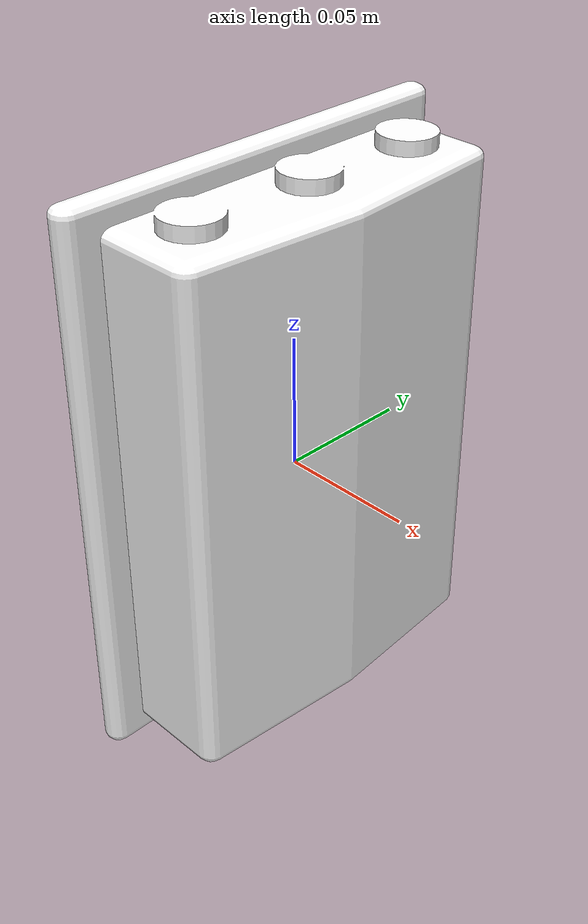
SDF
<?xml version="1.0" ?>
<sdf version="1.9">
	<model name="rfid-scanner">
		<static>false</static>
		<link name="rfid-scanner-link">
			<collision name="rfid-scanner-collision">
				<geometry>
					<mesh>
						<uri>model://rfid-scanner/meshes/model1.obj</uri>
					  <scale>1 1 1</scale>
					</mesh>
				</geometry>
			</collision>

			<visual name="rfid-scanner-visual">
				<pose degrees="true">0 0 0 90 0 180</pose>
				<geometry>
					<mesh>
						<uri>model://rfid-scanner/meshes/model1.obj</uri>
					  <scale>1 1 1</scale>
					</mesh>
				</geometry>
				<material>
					<ambient>1 1 1 1</ambient>
					<diffuse>1 1 1 1</diffuse>
					<specular>0.1 0.1 0.1 1</specular>
					<emissive>0 0 0 1</emissive>
				</material>
			</visual>

			<inertial>
				<mass>2</mass>
				<inertia>
					<ixx>1</ixx>
					<iyy>1</iyy>
					<izz>1</izz>
				</inertia>
			</inertial>

		</link>

		<plugin filename="librfidScanner" name="RFIDScanner"></plugin>

	</model>
</sdf>
